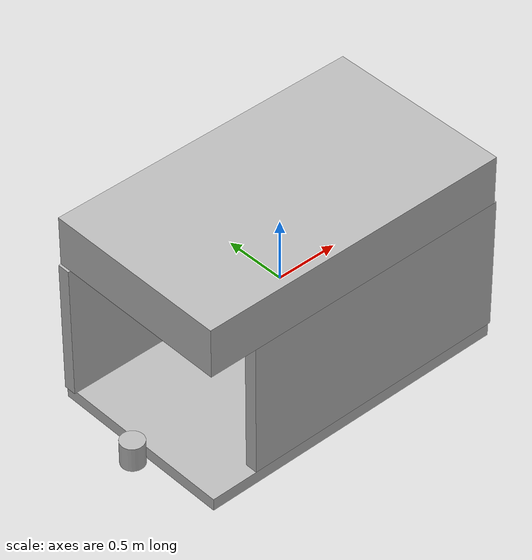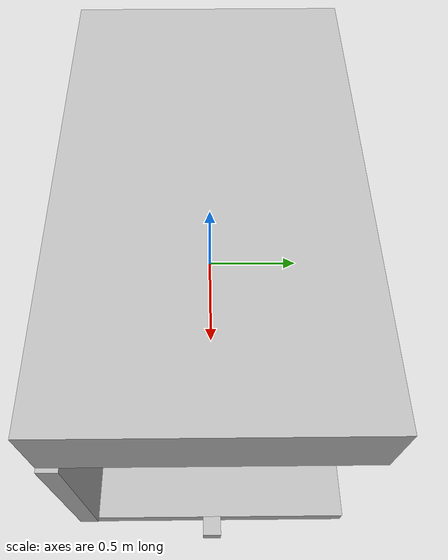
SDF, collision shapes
<?xml version="1.0"?>
<sdf version="1.7">
  <model name="rexrov">

    <link name="base_link">
      <inertial>
        <pose>0 0 -0.59 0 0 0</pose>
        <mass>1862.87</mass>
        <inertia>
          <ixx>525.39</ixx>
          <ixy>1.44</ixy>
          <ixz>33.41</ixz>
          <iyy>794.20</iyy>
          <iyz>2.6</iyz>
          <izz>691.23</izz>
        </inertia>
      </inertial>

      <visual name="visual_mesh_file">
        <pose>0 0 0 0 0 0</pose>
        <geometry>
          <mesh>
            <scale>1 1 1</scale>
            <uri>model://meshes/rexrov/RexROV_no_props.dae</uri>
          </mesh>
        </geometry>
      </visual>

      <!-- bottom plate -->
      <collision name="bottom_plate">
        <pose>0 0 -0.75 0 0 0</pose>
        <geometry>
          <box>
            <size>2.56 1.50 0.10</size>
          </box>
        </geometry>
      </collision>

      <!-- top plate -->
      <collision name="top_plate">
        <pose>0 0 0.60 0 0 0</pose>
        <geometry>
          <box>
            <size>2.56 1.50 0.40</size>
          </box>
        </geometry>
      </collision>

      <!-- left / right sides -->
      <collision name="left_side">
        <pose>-0.20 0.70 -0.15 0 0 0</pose>
        <geometry>
          <box>
            <size>2.20 0.10 1.10</size>
          </box>
        </geometry>
      </collision>

      <collision name="right_side">
        <pose>0.20 -0.70 -0.15 0 0 0</pose>
        <geometry>
          <box>
            <size>2.20 0.10 1.10</size>
          </box>
        </geometry>
      </collision>
      <sensor name="gps_sensor" type="navsat">
        <always_on>1</always_on>
        <update_rate>10.0</update_rate>
        <topic>/uuv/gps</topic>
        <navsat>
          <position_sensing>
            <horizontal>
              <noise type="gaussian"><mean>0.0</mean><stddev>1.5</stddev></noise>
            </horizontal>
          </position_sensing>
        </navsat>
      </sensor>
    </link>

    <link name="camera_link">
      <pose>1.33 0 -0.74 0 0 0</pose>
      <inertial>
        <mass>0.1</mass>
        <inertia>
          <ixx>0.000166667</ixx>
          <iyy>0.000166667</iyy>
          <izz>0.000166667</izz>
        </inertia>
      </inertial>
      <collision name="collision">
        <geometry>
          <box>
            <size>0.1 0.1 0.1</size>
          </box>
        </geometry>
      </collision>
      <visual name="visual">
        <geometry>
          <box>
            <size>0.1 0.1 0.1</size>
          </box>
        </geometry>
      </visual>
    </link>

    <joint name="camera_joint" type="fixed">
      <pose>1.33 0 -0.74 0 0 0.0</pose>
      <parent>base_link</parent>
      <child>camera_link</child>
    </joint>

    <link name="magnetometer_link">
      <pose>0 0 0 0 0 0</pose>
      <inertial>
        <mass>0.015</mass>
        <inertia>
          <ixx>0.00001</ixx>
          <ixy>0.0</ixy>
          <ixz>0.0</ixz>
          <iyy>0.00001</iyy>
          <iyz>0.0</iyz>
          <izz>0.00001</izz>
        </inertia>
      </inertial>

      <sensor name="magnetometer_sensor" type="magnetometer">
        <always_on>true</always_on>
        <update_rate>50.0</update_rate>
        <topic>/model/rexrov/magnetometer</topic>
        <magnetometer>
          <x>
            <noise type="gaussian">
              <mean>0.0</mean>
              <stddev>1.0</stddev>
            </noise>
          </x>
          <y>
            <noise type="gaussian">
              <mean>0.0</mean>
              <stddev>1.0</stddev>
            </noise>
          </y>
          <z>
            <noise type="gaussian">
              <mean>0.0</mean>
              <stddev>1.4</stddev>
            </noise>
          </z>
        </magnetometer>
      </sensor>
    </link>

    <joint name="magnetometer_joint" type="fixed">
      <pose>0 0 0 0 0 0</pose>
      <parent>base_link</parent>
      <child>magnetometer_link</child>
    </joint>

    <link name="imu_link">
      <inertial>
        <pose>0 0 0 0 0 0</pose>
        <mass>0.015</mass>
        <inertia>
          <ixx>0.00001</ixx>
          <ixy>0.0</ixy>
          <ixz>0.0</ixz>
          <iyy>0.00001</iyy>
          <iyz>0.0</iyz>
          <izz>0.00001</izz>
        </inertia>
      </inertial>
      <sensor name="imu_sensor" type="imu">
        <always_on>true</always_on>
        <update_rate>50.0</update_rate>
      </sensor>
    </link>

    <joint name="imu_joint" type="fixed">
      <pose>0 0 0 0 0 0</pose>
      <parent>base_link</parent>
      <child>imu_link</child>
    </joint>

    <link name="dvl_link">
      <pose>-1.34 0 -0.75 0 0 -1.57</pose>
      <inertial>
        <mass>3.5</mass>
        <inertia>
          <ixx>0.0195872</ixx>
          <ixy>0</ixy>
          <ixz>0</ixz>
          <iyy>0.0195872</iyy>
          <iyz>0</iyz>
          <izz>0.0151357</izz>
        </inertia>
      </inertial>
      <velocity_decay />
      <gravity>1</gravity>
      <velocity_decay />

      <sensor
        name="nortek_dvl500_300" type="custom"
        gz:type="dvl">
        <pose>0 0 0 0 0 0</pose>
        <always_on>1</always_on>
        <update_rate>8</update_rate>
        <topic>/model/rexrov/dvl/velocity</topic>
        <gz:dvl>
          <type>phased_array</type>
          <arrangement degrees="true">
            <beam id="1">
              <aperture>3</aperture>
              <rotation>-135</rotation>
              <tilt>25</tilt>
            </beam>
            <beam>
              <aperture>3</aperture>
              <rotation>135</rotation>
              <tilt>25</tilt>
            </beam>
            <beam>
              <aperture>3</aperture>
              <rotation>45</rotation>
              <tilt>25</tilt>
            </beam>
            <beam>
              <aperture>3</aperture>
              <rotation>-45</rotation>
              <tilt>25</tilt>
            </beam>
          </arrangement>
          <tracking>
            <water_mass_mode>
              <when>best</when>
              <water_velocity>
                <x>0.</x>
                <y>0.</y>
                <z>0.</z>
              </water_velocity>
              <boundaries>
                <near>10.</near>
                <far>100.</far>
              </boundaries>
              <bins>10</bins>
              <noise type="gaussian">
                <stddev>0.015</stddev>
              </noise>
              <visualize>true</visualize>
            </water_mass_mode>
            <bottom_mode>
              <when>best</when>
              <noise type="gaussian">
                <stddev>0.005</stddev>
              </noise>
              <visualize>true</visualize>
            </bottom_mode>
          </tracking>
          <maximum_range>200.</maximum_range>
          <minimum_range>0.3</minimum_range>
          <!-- ENU to FSD -->
          <reference_frame>0 0 0 3.14 0 -1.57</reference_frame>
        </gz:dvl>
      </sensor>

      <self_collide>0</self_collide>
      <enable_wind>0</enable_wind>
      <kinematic>0</kinematic>
      <visual name="dvl_link_visual">
        <pose>0 0 0 0 0 3.14159</pose>
        <geometry>
          <mesh>
            <scale>1 1 1</scale>
            <!-- Mesh is actually for a Nortek DVL1000-4000m for now -->
            <uri>model://dave_robot_models/meshes/rexrov/RexROV_no_props.dae</uri>
          </mesh>
        </geometry>
        <transparency>0</transparency>
        <cast_shadows>1</cast_shadows>
      </visual>
      <collision name="dvl_link_collision">
        <laser_retro>0</laser_retro>
        <max_contacts>10</max_contacts>
        <pose>0 0 0 3.14159 0 0</pose>
        <geometry>
          <cylinder>
            <radius>0.093</radius>
            <length>0.203</length>
          </cylinder>
        </geometry>
        <surface>
          <friction>
            <ode>
              <mu>1</mu>
              <mu2>1</mu2>
              <fdir1>0 0 0</fdir1>
              <slip1>0</slip1>
              <slip2>0</slip2>
            </ode>
            <torsional>
              <coefficient>1</coefficient>
              <patch_radius>0</patch_radius>
              <surface_radius>0</surface_radius>
              <use_patch_radius>1</use_patch_radius>
              <ode>
                <slip>0</slip>
              </ode>
            </torsional>
          </friction>
          <bounce>
            <restitution_coefficient>0</restitution_coefficient>
            <threshold>1e+06</threshold>
          </bounce>
          <contact>
            <collide_without_contact>0</collide_without_contact>
            <collide_without_contact_bitmask>1</collide_without_contact_bitmask>
            <collide_bitmask>1</collide_bitmask>
            <ode>
              <soft_cfm>0</soft_cfm>
              <soft_erp>0.2</soft_erp>
              <kp>1e+13</kp>
              <kd>1</kd>
              <max_vel>0.01</max_vel>
              <min_depth>0</min_depth>
            </ode>
            <bullet>
              <split_impulse>1</split_impulse>
              <split_impulse_penetration_threshold>-0.01</split_impulse_penetration_threshold>
              <soft_cfm>0</soft_cfm>
              <soft_erp>0.2</soft_erp>
              <kp>1e+13</kp>
              <kd>1</kd>
            </bullet>
          </contact>
        </surface>
      </collision>
    </link>

    <joint name="dvl_joint" type="fixed">
      <pose>-1.34 0 -0.75 0 0 -1.57</pose>
      <parent>base_link</parent>
      <child>dvl_link</child>
    </joint>

    <link name="thruster1">
      <pose>-0.890895 0.334385 0.528822 0 -1.300794 -0.928689</pose>
      <inertial>
        <mass>0.001</mass>
        <inertia>
          ixx="0.0005"
          ixy="0"
          ixz="0"
          iyy="0.0005"
          iyz="0"
          izz="0.0005"
        </inertia>
      </inertial>
      <visual name="prop_mesh_file">
        <geometry>
          <mesh>
            <scale>1 1 1</scale>
            <uri>model://meshes/rexrov/prop.dae</uri>
          </mesh>
        </geometry>
      </visual>
      <collision name="thruster1_collision">
        <geometry>
          <cylinder>
            <length>0.000001</length>
            <radius>0.000001</radius>
          </cylinder>
        </geometry>
        <pose>0 0 0 0 0 0</pose>
      </collision>
    </link>

    <link name="thruster2">
      <pose>-0.890895 -0.334385 0.528822 0 -1.300794 0.928689</pose>
      <inertial>
        <mass>0.001</mass>
        <inertia>
          ixx="0.0005"
          ixy="0"
          ixz="0"
          iyy="0.0005"
          iyz="0"
          izz="0.0005"
        </inertia>
      </inertial>
      <visual name="prop_mesh_file">
        <geometry>
          <mesh>
            <scale>1 1 1</scale>
            <uri>model://meshes/rexrov/prop.dae</uri>
          </mesh>
        </geometry>
      </visual>
      <collision name="thruster2_collision">
        <geometry>
          <cylinder>
            <length>0.000001</length>
            <radius>0.000001</radius>
          </cylinder>
        </geometry>
        <pose>0 0 0 0 0 0</pose>
      </collision>
    </link>

    <link name="thruster3">
      <pose>0.890895 0.334385 0.528822 0 -1.840798 0.928689</pose>
      <inertial>
        <mass>0.001</mass>
        <inertia>
          ixx="0.0005"
          ixy="0"
          ixz="0"
          iyy="0.0005"
          iyz="0"
          izz="0.0005"
        </inertia>
      </inertial>
      <visual name="prop_mesh_file">
        <geometry>
          <mesh>
            <scale>1 1 1</scale>
            <uri>model://meshes/rexrov/prop.dae</uri>
          </mesh>
        </geometry>
      </visual>
      <collision name="thruster3_collision">
        <geometry>
          <cylinder>
            <length>0.000001</length>
            <radius>0.000001</radius>
          </cylinder>
        </geometry>
        <pose>0 0 0 0 0 0</pose>
      </collision>
    </link>

    <link name="thruster4">
      <pose>0.890895 -0.334385 0.528822 0 -1.300794 -0.928689</pose>
      <inertial>
        <mass>0.001</mass>
        <inertia>
          ixx="0.0005"
          ixy="0"
          ixz="0"
          iyy="0.0005"
          iyz="0"
          izz="0.0005"
        </inertia>
      </inertial>
      <visual name="prop_mesh_file">
        <geometry>
          <mesh>
            <scale>1 1 1</scale>
            <uri>model://meshes/rexrov/prop.dae</uri>
          </mesh>
        </geometry>
      </visual>
      <collision name="thruster4_collision">
        <geometry>
          <cylinder>
            <length>0.000001</length>
            <radius>0.000001</radius>
          </cylinder>
        </geometry>
        <pose>0 0 0 0 0 0</pose>
      </collision>
    </link>

    <link name="thruster5">
      <pose>-0.412125 0.505415 0.129 0 0 0.785398</pose>
      <inertial>
        <mass>0.001</mass>
        <inertia>
          ixx="0.0005"
          ixy="0"
          ixz="0"
          iyy="0.0005"
          iyz="0"
          izz="0.0005"
        </inertia>
      </inertial>
      <visual name="prop_mesh_file">
        <geometry>
          <mesh>
            <scale>1 1 1</scale>
            <uri>model://meshes/rexrov/prop.dae</uri>
          </mesh>
        </geometry>
      </visual>
      <collision name="thruster5_collision">
        <geometry>
          <cylinder>
            <length>0.000001</length>
            <radius>0.000001</radius>
          </cylinder>
        </geometry>
        <pose>0 0 0 0 0 0</pose>
      </collision>
    </link>

    <link name="thruster6">
      <pose>-0.412125 -0.505415 0.129 0 0 -0.785398</pose>
      <inertial>
        <mass>0.001</mass>
        <inertia>
          ixx="0.0005"
          ixy="0"
          ixz="0"
          iyy="0.0005"
          iyz="0"
          izz="0.0005"
        </inertia>
      </inertial>
      <visual name="prop_mesh_file">
        <geometry>
          <mesh>
            <scale>1 1 1</scale>
            <uri>model://meshes/rexrov/prop.dae</uri>
          </mesh>
        </geometry>
      </visual>
      <collision name="thruster6_collision">
        <geometry>
          <cylinder>
            <length>0.000001</length>
            <radius>0.000001</radius>
          </cylinder>
        </geometry>
        <pose>0 0 0 0 0 0</pose>
      </collision>
    </link>

    <link name="thruster7">
      <pose>0.412125 0.505415 0.129 0 0 2.356194</pose>
      <inertial>
        <mass>0.001</mass>
        <inertia>
          ixx="0.0005"
          ixy="0"
          ixz="0"
          iyy="0.0005"
          iyz="0"
          izz="0.0005"
        </inertia>
      </inertial>
      <visual name="prop_mesh_file">
        <geometry>
          <mesh>
            <scale>1 1 1</scale>
            <uri>model://meshes/rexrov/prop.dae</uri>
          </mesh>
        </geometry>
      </visual>
      <collision name="thruster7_collision">
        <geometry>
          <cylinder>
            <length>0.000001</length>
            <radius>0.000001</radius>
          </cylinder>
        </geometry>
        <pose>0 0 0 0 0 0</pose>
      </collision>
    </link>

    <link name="thruster8">
      <pose>0.412125 -0.505415 0.129 0 0 -2.356194</pose>
      <inertial>
        <mass>0.001</mass>
        <inertia>
          ixx="0.0005"
          ixy="0"
          ixz="0"
          iyy="0.0005"
          iyz="0"
          izz="0.0005"
        </inertia>
      </inertial>
      <visual name="prop_mesh_file">
        <geometry>
          <mesh>
            <scale>1 1 1</scale>
            <uri>model://meshes/rexrov/prop.dae</uri>
          </mesh>
        </geometry>
      </visual>
      <collision name="thruster8_collision">
        <geometry>
          <cylinder>
            <length>0.000001</length>
            <radius>0.000001</radius>
          </cylinder>
        </geometry>
        <pose>0 0 0 0 0 0</pose>
      </collision>
    </link>

    <joint name="thruster1_joint" type="revolute">
      <pose>-0.890895 0.334385 0.528822 0 -1.300794 -0.928689</pose>
      <parent>base_link</parent>
      <child>thruster1</child>
      <axis>
        <xyz>1 0 0</xyz>
        <limit>
          <effort>-1</effort>
          <velocity>-1</velocity>
        </limit>
      </axis>
    </joint>

    <joint name="thruster2_joint" type="revolute">
      <pose>-0.890895 -0.334385 0.528822 0 -1.300794 0.928689</pose>
      <parent>base_link</parent>
      <child>thruster2</child>
      <axis>
        <xyz>1 0 0</xyz>
        <limit>
          <effort>-1</effort>
          <velocity>-1</velocity>
        </limit>
      </axis>
    </joint>

    <joint name="thruster3_joint" type="revolute">
      <pose>0.890895 0.334385 0.528822 0 -1.840798 0.928689</pose>
      <parent>base_link</parent>
      <child>thruster3</child>
      <axis>
        <xyz>1 0 0</xyz>
        <limit>
          <effort>-1</effort>
          <velocity>-1</velocity>
        </limit>
      </axis>
    </joint>

    <joint name="thruster4_joint" type="revolute">
      <pose>0.890895 -0.334385 0.528822 0 -1.300794 -0.928689</pose>
      <parent>base_link</parent>
      <child>thruster4</child>
      <axis>
        <xyz>1 0 0</xyz>
        <limit>
          <effort>-1</effort>
          <velocity>-1</velocity>
        </limit>
      </axis>
    </joint>

    <joint name="thruster5_joint" type="revolute">
      <pose>-0.412125 0.505415 0.129 0 0 0.785398</pose>
      <parent>base_link</parent>
      <child>thruster5</child>
      <axis>
        <xyz>1 0 0</xyz>
        <limit>
          <effort>-1</effort>
          <velocity>-1</velocity>
        </limit>
      </axis>
    </joint>

    <joint name="thruster6_joint" type="revolute">
      <pose>-0.412125 -0.505415 0.129 0 0 -0.785398</pose>
      <parent>base_link</parent>
      <child>thruster6</child>
      <axis>
        <xyz>1 0 0</xyz>
        <limit>
          <effort>-1</effort>
          <velocity>-1</velocity>
        </limit>
      </axis>
    </joint>

    <joint name="thruster7_joint" type="revolute">
      <pose>0.412125 0.505415 0.129 0 0 2.356194</pose>
      <parent>base_link</parent>
      <child>thruster7</child>
      <axis>
        <xyz>1 0 0</xyz>
        <limit>
          <effort>-1</effort>
          <velocity>-1</velocity>
        </limit>
      </axis>
    </joint>

    <joint name="thruster8_joint" type="revolute">
      <pose>0.412125 -0.505415 0.129 0 0 -2.356194</pose>
      <parent>base_link</parent>
      <child>thruster8</child>
      <axis>
        <xyz>1 0 0</xyz>
        <limit>
          <effort>-1</effort>
          <velocity>-1</velocity>
        </limit>
      </axis>
    </joint>

    <plugin
      filename="gz-sim-thruster-system"
      name="gz::sim::systems::Thruster">
      <namespace>rexrov</namespace>
      <joint_name>thruster1_joint</joint_name>
      <fluid_density>1000.0</fluid_density>
      <thrust_coefficient>0.00031</thrust_coefficient>
      <velocity_control>true</velocity_control>
      <use_angvel_cmd>false</use_angvel_cmd>
    </plugin>

    <plugin
      filename="gz-sim-thruster-system"
      name="gz::sim::systems::Thruster">
      <namespace>rexrov</namespace>
      <joint_name>thruster2_joint</joint_name>
      <fluid_density>1000.0</fluid_density>
      <thrust_coefficient>0.00031</thrust_coefficient>
      <velocity_control>true</velocity_control>
      <use_angvel_cmd>false</use_angvel_cmd>
    </plugin>

    <plugin
      filename="gz-sim-thruster-system"
      name="gz::sim::systems::Thruster">
      <namespace>rexrov</namespace>
      <joint_name>thruster3_joint</joint_name>
      <fluid_density>1000.0</fluid_density>
      <thrust_coefficient>0.00031</thrust_coefficient>
      <velocity_control>true</velocity_control>
      <use_angvel_cmd>false</use_angvel_cmd>
    </plugin>

    <plugin
      filename="gz-sim-thruster-system"
      name="gz::sim::systems::Thruster">
      <namespace>rexrov</namespace>
      <joint_name>thruster4_joint</joint_name>
      <fluid_density>1000.0</fluid_density>
      <thrust_coefficient>0.00031</thrust_coefficient>
      <velocity_control>true</velocity_control>
      <use_angvel_cmd>false</use_angvel_cmd>
    </plugin>

    <plugin
      filename="gz-sim-thruster-system"
      name="gz::sim::systems::Thruster">
      <namespace>rexrov</namespace>
      <joint_name>thruster5_joint</joint_name>
      <fluid_density>1000.0</fluid_density>
      <thrust_coefficient>0.00031</thrust_coefficient>
      <velocity_control>true</velocity_control>
      <use_angvel_cmd>false</use_angvel_cmd>
    </plugin>

    <plugin
      filename="gz-sim-thruster-system"
      name="gz::sim::systems::Thruster">
      <namespace>rexrov</namespace>
      <joint_name>thruster6_joint</joint_name>
      <fluid_density>1000.0</fluid_density>
      <thrust_coefficient>0.00031</thrust_coefficient>
      <velocity_control>true</velocity_control>
      <use_angvel_cmd>false</use_angvel_cmd>
    </plugin>

    <plugin
      filename="gz-sim-thruster-system"
      name="gz::sim::systems::Thruster">
      <namespace>rexrov</namespace>
      <joint_name>thruster7_joint</joint_name>
      <fluid_density>1000.0</fluid_density>
      <thrust_coefficient>0.00031</thrust_coefficient>
      <velocity_control>true</velocity_control>
      <use_angvel_cmd>false</use_angvel_cmd>
    </plugin>

    <plugin
      filename="gz-sim-thruster-system"
      name="gz::sim::systems::Thruster">
      <namespace>rexrov</namespace>
      <joint_name>thruster8_joint</joint_name>
      <fluid_density>1000.0</fluid_density>
      <thrust_coefficient>0.00031</thrust_coefficient>
      <velocity_control>true</velocity_control>
      <use_angvel_cmd>false</use_angvel_cmd>
    </plugin>

    <plugin
      filename="gz-sim-hydrodynamics-system"
      name="gz::sim::systems::Hydrodynamics">

      <!-- adding for ocean current force application -->

      <disable_coriolis>false</disable_coriolis>
      <disable_added_mass>false</disable_added_mass>

      <water_density>1028</water_density>

      <!-- till here -->
      <link_name>base_link</link_name>
      <!-- Added mass -->
      <!-- Using values of LRAUV -->
      <xDotU>-4.876161</xDotU>
      <yDotV>-126.324739</yDotV>
      <zDotW>-126.324739</zDotW>
      <kDotP>0</kDotP>
      <mDotQ>-33.46</mDotQ>
      <nDotR>-33.46</nDotR>

      <!-- Linear Drag Coefficients -->
      <xU>-74.82</xU>
      <yV>-69.48</yV>
      <zW>-728.4</zW>
      <kP>-268.8</kP>
      <mQ>-309.77</mQ>
      <nR>-105</nR>

      <!-- Quadratic Drag Coefficients -->
      <xUabsU>-748.22</xUabsU>
      <yVabsV>-992.53</yVabsV>
      <zWabsW>-1821.01</zWabsW>
      <kPabsP>-672</kPabsP>
      <mQabsQ>-774.44</mQabsQ>
      <nRabsR>-523.27</nRabsR>
    </plugin>

    <plugin
      filename="gz-sim-imu-system"
      name="gz::sim::systems::Imu">
    </plugin>

    <plugin
      filename="gz-sim-magnetometer-system"
      name="gz::sim::systems::Magnetometer">
    </plugin>

    <plugin
      filename="gz-sim-odometry-publisher-system"
      name="gz::sim::systems::OdometryPublisher">
      <odom_frame>map</odom_frame>
      <robot_base_frame>base_link</robot_base_frame>
      <dimensions>3</dimensions>
      <odom_publish_frequency>100</odom_publish_frequency>
    </plugin>

    <plugin
      filename="gz-sim-joint-state-publisher-system"
      name="gz::sim::systems::JointStatePublisher">
    </plugin>

    <plugin
      filename="gz-sim-navsat-system"
      name="gz::sim::systems::NavSat">
    </plugin>
    <!-- Sea Pressure Sensor Plugin -->
    <plugin
      filename="sea_pressure_sensor"
      name="dave_gz_sensor_plugins::SubseaPressureSensorPlugin">
      <namespace>rexrov</namespace>
      <topic>sea_pressure</topic>
      <update_rate>10</update_rate>
      <noise_sigma>3.0</noise_sigma>
      <estimate_depth_on>true</estimate_depth_on>
      <standard_pressure>101.325</standard_pressure>
      <kPa_per_meter>9.80638</kPa_per_meter>
    </plugin>
    <link name="sonar_link">
      <pose> 0.2 0.0 -0.13 0 0 0</pose>
      <sensor name="multibeam_sonar" type="custom" gz:type="multibeam_sonar">
        <always_on>true</always_on>
        <update_rate>30.0</update_rate>
        <topic>/sensor/multibeam_sonar</topic>
        <visualize>true</visualize>
        <gz:multibeam_sonar>
          <ray degrees="false">
            <scan>
              <horizontal>
                <beams>512</beams>
                <min_angle>-1.13447</min_angle>
                <max_angle>1.13447</max_angle>
              </horizontal>
              <vertical>
                <rays>300</rays>
                <min_angle>-0.10472</min_angle>
                <max_angle>0.10472</max_angle>
              </vertical>
            </scan>
            <range>
              <min>0.1</min>
              <max>10.0</max>
            </range>
          </ray>
          <spec>
            <verticalFOV>12</verticalFOV>
            <sonarFreq>900e3</sonarFreq>
            <bandwidth>29.9e3</bandwidth>
            <soundSpeed>1500</soundSpeed>
            <sourceLevel>220</sourceLevel>
            <maxDistance>10</maxDistance>
            <constantReflectivity>false</constantReflectivity>
            <raySkips>10</raySkips>
            <sensorGain>0.02</sensorGain>
            <plotScaler>10</plotScaler>
            <writeLog>true</writeLog>
            <debugFlag>true</debugFlag>
            <writeFrameInterval>5</writeFrameInterval>
            <blazingSonarImage>true</blazingSonarImage>
            <pointCloudTopicName>point_cloud</pointCloudTopicName>
            <sonarImageRawTopicName>sonar_image_raw</sonarImageRawTopicName>
            <sonarImageTopicName>sonar_image</sonarImageTopicName>
            <frameName>forward_sonar_optical_link</frameName>
          </spec>
        </gz:multibeam_sonar>
      </sensor>
    </link>
    <joint name="sonar_joint" type="fixed">
      <parent>base_link</parent>
      <child>sonar_link</child>
    </joint>
    <link name="camera1_link">
      <pose>1.5 0.0 0.2 0 0 0</pose>
      <sensor name="underwater_camera" type="camera">
        <always_on>1</always_on>
        <update_rate>30.0</update_rate>
        <visualize>true</visualize>
        <topic>/rexrov/camera/image_raw</topic>
        <camera>
          <horizontal_fov>1.05</horizontal_fov>
          <image>
            <width>640</width>
            <height>480</height>
            <format>R8G8B8</format>
          </image>
          <clip>
            <near>0.1</near>
            <far>100.0</far>
          </clip>
        </camera>
      </sensor>
    </link>
    <joint name="camera1_joint" type="fixed">
      <parent>base_link</parent>
      <child>camera1_link</child>
    </joint>

    <!-- Dave Transient Current Plugin -->

  </model>
</sdf>
